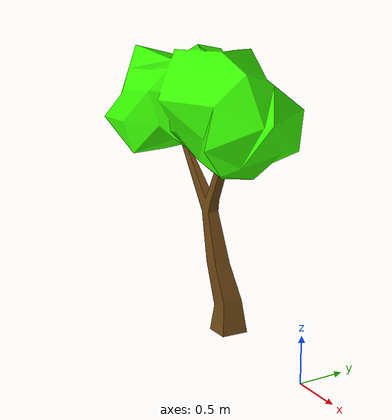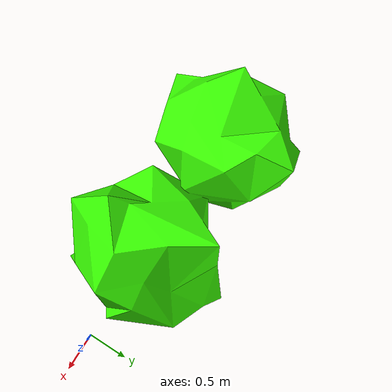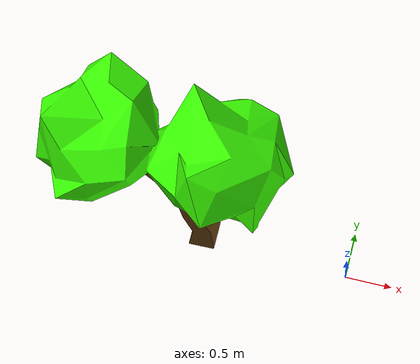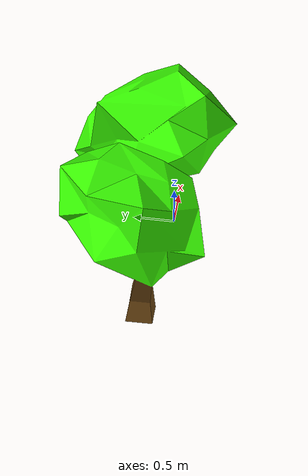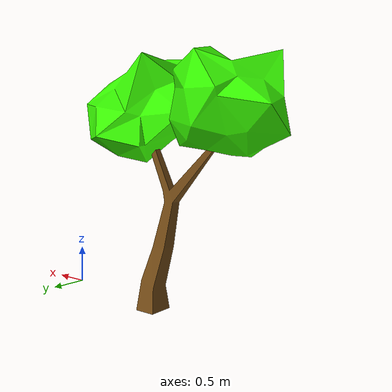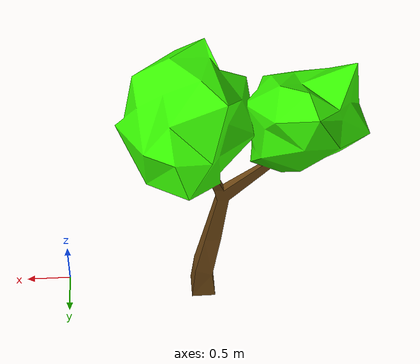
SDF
<?xml version="1.0" ?>
<sdf version="1.0">
  <model name="tree 1">

    <static>true</static>
    <link name="link">

      <collision name="collision">
        <geometry>
          <mesh>
            <uri>model://tree/meshes/tree.dae</uri>
            <scale>0.1 0.1 0.1</scale>
          </mesh>
        </geometry>
      </collision>

      <visual name="visual">
        <geometry>
          <mesh>
            <uri>model://tree/meshes/tree.dae</uri>
            <scale>0.1 0.1 0.1</scale>
          </mesh>
        </geometry>
      </visual>

    </link>
  </model>
</sdf>
